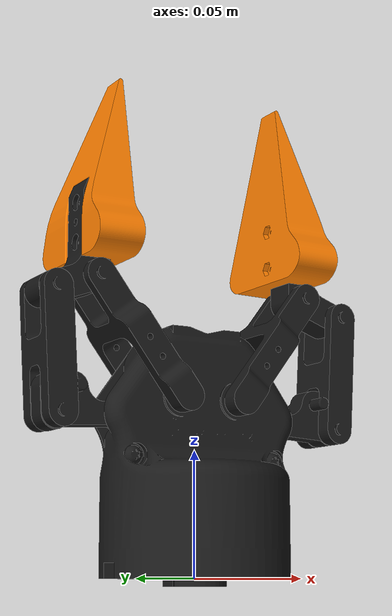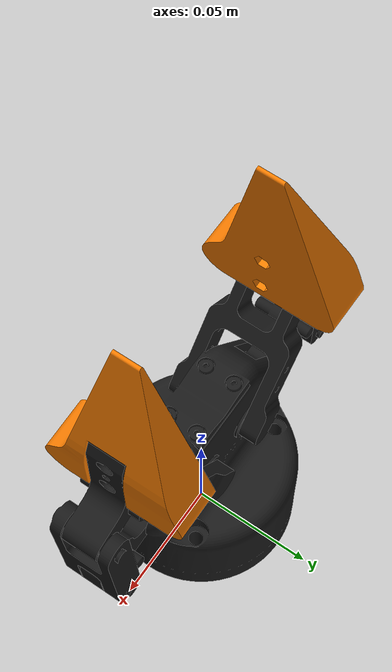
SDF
<?xml version='1.0' encoding='UTF-8'?>
<sdf version="1.7" xmlns:drake="http://drake.mit.edu">
  <model name="robotiq_gripper_85">

    <!-- Base link of the gripper -->
    <link name="robotiq_85_base_link">
      <pose>0 0 0 0 0 0</pose>
      <inertial>
        <pose>0.00021987 -2.3546E-10 0.030163 0 0 0</pose>
        <mass>0.30915</mass>
        <inertia>
          <ixx>0.00028972</ixx>
          <ixy>-5.7879E-10</ixy>
          <ixz>-1.8543E-06</ixz>
          <iyy>0.00030737</iyy>
          <iyz>1.682E-12</iyz>
          <izz>0.00019914</izz>
        </inertia>
      </inertial>

      <visual name="visual">
        <pose>0 0 0 0 0 0</pose>
        <geometry>
          <mesh>
            <uri>meshes/robotiq_85_base_link_fine.obj</uri>
          </mesh>
        </geometry>
        <material>
          <ambient>0.1 0.1 0.1 1</ambient>
          <diffuse>0.1 0.1 0.1 1</diffuse>
          <specular>0.2 0.2 0.2 1</specular>
        </material>
      </visual>

      <collision name="collision">
        <pose>0 0 0 0 0 0</pose>
        <geometry>
          <mesh>
            <uri>meshes/robotiq_85_base_link_coarse.obj</uri>
          </mesh>
        </geometry>
      </collision>
    </link>

    <!-- Left outer knuckle -->
    <link name="left_outer_knuckle">
      <pose>0.0306011444260539 0 0.0627920162695395 0 0 0</pose>
      <inertial>
        <pose>0.0178331863169983 3.68915177224286E-11 0.0021442477325704 0 0 0</pose>
        <mass>0.00684838849434396</mass>
        <inertia>
          <ixx>2.66832029033166E-07</ixx>
          <ixy>1.66142314639824E-15</ixy>
          <ixz>1.45945633322873E-07</ixz>
          <iyy>1.3889233257419E-06</iyy>
          <iyz>2.82951161241588E-15</iyz>
          <izz>1.26603336914415E-06</izz>
        </inertia>
      </inertial>

      <visual name="visual">
        <pose>0 0 0 0 0 0</pose>
        <geometry>
          <mesh>
            <uri>meshes/outer_knuckle_fine.obj</uri>
          </mesh>
        </geometry>
        <material>
          <ambient>0.1 0.1 0.1 1</ambient>
          <diffuse>0.1 0.1 0.1 1</diffuse>
          <specular>0.2 0.2 0.2 1</specular>
        </material>
      </visual>

      <collision name="collision">
        <pose>0 0 0 0 0 0</pose>
        <geometry>
          <mesh>
            <uri>meshes/outer_knuckle_coarse.obj</uri>
          </mesh>
        </geometry>
      </collision>
    </link>

    <!-- Main finger joint (primary actuated joint) -->
    <joint name="finger_joint" type="revolute">
      <pose>0 0 0 0 0 3.14159265359</pose>
      <parent>robotiq_85_base_link</parent>
      <child>left_outer_knuckle</child>
      <axis>
        <xyz>0 1 0</xyz>
        <limit>
          <lower>0</lower>
          <upper>0.725</upper>
          <velocity>2.0</velocity>
          <effort>100</effort>
        </limit>
      </axis>
    </joint>

    <!-- Left outer finger -->
    <link name="left_outer_finger">
      <pose>0.062292188669718 0 0.0608580525123135 0 0 0</pose>
      <inertial>
        <pose>0.00131451599174296 2.88942057994543E-15 0.0215404163180413 0 0 0</pose>
        <mass>0.0273093985570947</mass>
        <inertia>
          <ixx>8.51629628283022E-06</ixx>
          <ixy>2.58174336207405E-19</ixy>
          <ixz>3.83829504344079E-07</ixz>
          <iyy>6.9133328065108E-06</iyy>
          <iyz>-7.58589926143789E-19</iyz>
          <izz>2.25006832221981E-06</izz>
        </inertia>
      </inertial>

      <visual name="visual">
        <pose>0 0 0 0 0 0</pose>
        <geometry>
          <mesh>
            <uri>meshes/outer_finger_fine.obj</uri>
          </mesh>
        </geometry>
        <material>
          <ambient>0.1 0.1 0.1 1</ambient>
          <diffuse>0.1 0.1 0.1 1</diffuse>
          <specular>0.2 0.2 0.2 1</specular>
        </material>
      </visual>

      <collision name="collision">
        <pose>0 0 0 0 0 0</pose>
        <geometry>
          <mesh>
            <uri>meshes/outer_finger_coarse.obj</uri>
          </mesh>
        </geometry>
      </collision>
    </link>

    <!-- Left outer finger joint (fixed) -->
    <joint name="left_outer_finger_joint" type="fixed">
      <pose>0.0316910442266543 0 -0.00193396375724605 0 0 0</pose>
      <parent>left_outer_knuckle</parent>
      <child>left_outer_finger</child>
    </joint>

    <!-- Left inner knuckle -->
    <link name="left_inner_knuckle">
      <pose>0.0127000000001501 0 0.0693074999999639 0 0 0</pose>
      <inertial>
        <pose>0.0168606186773776 3.93808471820465E-10 0.0226699950793434 0 0 0</pose>
        <mass>0.0110930853895903</mass>
        <inertia>
          <ixx>4.27134775939882E-06</ixx>
          <ixy>-8.53568456728898E-15</ixy>
          <ixz>1.77774229944246E-06</ixz>
          <iyy>3.96548790524392E-06</iyy>
          <iyz>-8.45108024914164E-15</iyz>
          <izz>3.20325997634666E-06</izz>
        </inertia>
      </inertial>

      <visual name="visual">
        <pose>0 0 0 0 0 0</pose>
        <geometry>
          <mesh>
            <uri>meshes/inner_knuckle_fine.obj</uri>
          </mesh>
        </geometry>
        <material>
          <ambient>0.1 0.1 0.1 1</ambient>
          <diffuse>0.1 0.1 0.1 1</diffuse>
          <specular>0.2 0.2 0.2 1</specular>
        </material>
      </visual>

      <collision name="collision">
        <pose>0 0 0 0 0 0</pose>
        <geometry>
          <mesh>
            <uri>meshes/inner_knuckle_coarse.obj</uri>
          </mesh>
        </geometry>
      </collision>
    </link>

    <!-- Left inner knuckle joint -->
    <joint name="left_inner_knuckle_joint" type="revolute">
      <pose>0 0 0 0 0 3.14159265359</pose>
      <parent>robotiq_85_base_link</parent>
      <child>left_inner_knuckle</child>
      <axis>
        <xyz>0 1 0</xyz>
        <limit>
          <lower>0</lower>
          <upper>0.8757</upper>
          <velocity>2.0</velocity>
          <effort>100</effort>
        </limit>
      </axis>
    </joint>

    <!-- Left inner finger -->
    <link name="left_inner_finger">
      <pose>0.047285310862444 0 0.1148045193817614 0 0 0</pose>
      <inertial>
        <pose>0.00602756228812038 -6.47284509480176E-15 0.00669925609578108 0 0 0</pose>
        <mass>0.00724255346165744</mass>
        <inertia>
          <ixx>1.47824283625957E-06</ixx>
          <ixy>-3.95952064019123E-19</ixy>
          <ixz>1.80452387179145E-07</ixz>
          <iyy>9.81964343679842E-07</iyy>
          <iyz>1.39681001690899E-18</iyz>
          <izz>7.70370391807832E-07</izz>
        </inertia>
      </inertial>

      <visual name="visual">
        <pose>0 0 0 0 0 0</pose>
        <geometry>
          <mesh>
            <uri>meshes/inner_finger_fine_long.obj</uri>
          </mesh>
        </geometry>
        <material>
          <ambient>0.1 0.1 0.1 1</ambient>
          <diffuse>0.1 0.1 0.1 1</diffuse>
          <specular>0.2 0.2 0.2 1</specular>
        </material>
      </visual>

      <collision name="collision">
        <pose>0 0 0 0 0 0</pose>
        <geometry>
          <mesh>
            <uri>meshes/inner_finger_coarse.obj</uri>
          </mesh>
        </geometry>
      </collision>
    </link>

    <!-- Left inner finger joint -->
    <joint name="left_inner_finger_joint" type="revolute">
      <pose>0 0 0 0 0 0</pose>
      <parent>left_inner_knuckle</parent>
      <child>left_inner_finger</child>
      <axis>
        <xyz>0 1 0</xyz>
        <limit>
          <lower>0</lower>
          <upper>0.8757</upper>
          <velocity>2.0</velocity>
          <effort>100</effort>
        </limit>
      </axis>
    </joint>

    <!-- Left long finger -->
    <link name="left_long_finger">
      <pose>0.047285310862444 0 0.1148045193817614 0 0 0</pose>
      <inertial>
        <pose>0.00602756228812038 -6.47284509480176E-15 0.00669925609578108 0 0 0</pose>
        <mass>0.00724255346165744</mass>
        <inertia>
          <ixx>1.47824283625957E-06</ixx>
          <ixy>-3.95952064019123E-19</ixy>
          <ixz>1.80452387179145E-07</ixz>
          <iyy>9.81964343679842E-07</iyy>
          <iyz>1.39681001690899E-18</iyz>
          <izz>7.70370391807832E-07</izz>
        </inertia>
      </inertial>

      <visual name="visual">
        <pose>0 0 0 0 0 0</pose>
        <geometry>
          <mesh>
            <uri>meshes/left_finger.obj</uri>
          </mesh>
        </geometry>
        <material>
          <ambient>1 0.5 0 1</ambient>
          <diffuse>1 0.5 0 1</diffuse>
          <specular>0.2 0.2 0.2 1</specular>
        </material>
      </visual>

      <collision name="collision">
        <pose>0 0 0 0 0 0</pose>
        <geometry>
          <mesh>
            <uri>meshes/left_finger.obj</uri>
          </mesh>
        </geometry>
      </collision>
    </link>

    <!-- Left inner finger joint -->
    <joint name="left_long_finger_joint" type="fixed">
      <pose>0 0 0 0 0 0</pose>
      <parent>left_inner_finger</parent>
      <child>left_long_finger</child>
    </joint>

    <!-- Right outer knuckle -->
    <link name="right_outer_knuckle">
      <pose>-0.0306011444258893 0 0.0627920162695395 0 0 3.14159265358979</pose>
      <inertial>
        <pose>0.0178331863169983 3.68915177224286E-11 0.0021442477325704 0 0 0</pose>
        <mass>0.00684838849434396</mass>
        <inertia>
          <ixx>2.66832029033166E-07</ixx>
          <ixy>1.66142314639824E-15</ixy>
          <ixz>1.45945633322873E-07</ixz>
          <iyy>1.3889233257419E-06</iyy>
          <iyz>2.82951161241588E-15</iyz>
          <izz>1.26603336914415E-06</izz>
        </inertia>
      </inertial>

      <visual name="visual">
        <pose>0 0 0 0 0 0</pose>
        <geometry>
          <mesh>
            <uri>meshes/outer_knuckle_fine.obj</uri>
          </mesh>
        </geometry>
        <material>
          <ambient>0.1 0.1 0.1 1</ambient>
          <diffuse>0.1 0.1 0.1 1</diffuse>
          <specular>0.2 0.2 0.2 1</specular>
        </material>
      </visual>

      <collision name="collision">
        <pose>0 0 0 0 0 0</pose>
        <geometry>
          <mesh>
            <uri>meshes/outer_knuckle_coarse.obj</uri>
          </mesh>
        </geometry>
      </collision>
    </link>

    <!-- Right outer knuckle joint -->
    <joint name="right_outer_knuckle_joint" type="revolute">
      <pose>0 0 0 0 0 3.14159265359</pose>
      <parent>robotiq_85_base_link</parent>
      <child>right_outer_knuckle</child>
      <axis>
        <xyz>0 1 0</xyz>
        <limit>
          <lower>0</lower>
          <upper>0.8757</upper>
          <velocity>2.0</velocity>
          <effort>100</effort>
        </limit>
      </axis>
    </joint>

    <!-- Right outer finger -->
    <link name="right_outer_finger">
      <pose>-0.062310735362614 0 0.0611906597740708 0 0 3.14159265358979</pose>
      <inertial>
        <pose>0.00108844269639009 -2.611488350845E-15 0.0215530225245502 0 0 0</pose>
        <mass>0.0273093985570947</mass>
        <inertia>
          <ixx>8.52366028592721E-06</ixx>
          <ixy>3.41683380899422E-19</ixy>
          <ixz>3.18003675694284E-07</ixz>
          <iyy>6.91333280651081E-06</iyy>
          <iyz>7.37726682706417E-19</iyz>
          <izz>2.24270431912283E-06</izz>
        </inertia>
      </inertial>

      <visual name="visual">
        <pose>0 0 0 0 0 0</pose>
        <geometry>
          <mesh>
            <uri>meshes/outer_finger_fine.obj</uri>
          </mesh>
        </geometry>
        <material>
          <ambient>0.1 0.1 0.1 1</ambient>
          <diffuse>0.1 0.1 0.1 1</diffuse>
          <specular>0.2 0.2 0.2 1</specular>
        </material>
      </visual>

      <collision name="collision">
        <pose>0 0 0 0 0 0</pose>
        <geometry>
          <mesh>
            <uri>meshes/outer_finger_coarse.obj</uri>
          </mesh>
        </geometry>
      </collision>
    </link>

    <!-- Right outer finger joint (fixed) -->
    <joint name="right_outer_finger_joint" type="fixed">
      <pose>0 0 0 0 0 0</pose>
      <parent>right_outer_knuckle</parent>
      <child>right_outer_finger</child>
    </joint>

    <!-- Right inner knuckle -->
    <link name="right_inner_knuckle">
      <pose>-0.0126999999998499 0 0.0693075000000361 0 0 3.14159265358979</pose>
      <inertial>
        <pose>0.0168606186773776 3.93808471820465E-10 0.0226699950793434 0 0 0</pose>
        <mass>0.0110930853895903</mass>
        <inertia>
          <ixx>4.27134775939882E-06</ixx>
          <ixy>-8.53568456728898E-15</ixy>
          <ixz>1.77774229944246E-06</ixz>
          <iyy>3.96548790524392E-06</iyy>
          <iyz>-8.45108024914164E-15</iyz>
          <izz>3.20325997634666E-06</izz>
        </inertia>
      </inertial>

      <visual name="visual">
        <pose>0 0 0 0 0 0</pose>
        <geometry>
          <mesh>
            <uri>meshes/inner_knuckle_fine.obj</uri>
          </mesh>
        </geometry>
        <material>
          <ambient>0.1 0.1 0.1 1</ambient>
          <diffuse>0.1 0.1 0.1 1</diffuse>
          <specular>0.2 0.2 0.2 1</specular>
        </material>
      </visual>

      <collision name="collision">
        <pose>0 0 0 0 0 0</pose>
        <geometry>
          <mesh>
            <uri>meshes/inner_knuckle_coarse.obj</uri>
          </mesh>
        </geometry>
      </collision>
    </link>

    <!-- Right inner knuckle joint -->
    <joint name="right_inner_knuckle_joint" type="revolute">
      <pose>0 0 0 0 0 3.14159265359</pose>
      <parent>robotiq_85_base_link</parent>
      <child>right_inner_knuckle</child>
      <axis>
        <xyz>0 1 0</xyz>
        <limit>
          <lower>0</lower>
          <upper>0.8757</upper>
          <velocity>2.0</velocity>
          <effort>100</effort>
        </limit>
      </axis>
    </joint>

    <!-- Right inner finger -->
    <link name="right_inner_finger">
      <pose>-0.047406047545241 0 0.1151648878542049 0 0 3.14159265358979</pose>
      <inertial>
        <pose>0.00602756228812038 -6.47284509480176E-15 0.00669925609578108 0 0 0</pose>
        <mass>0.00724255346165744</mass>
        <inertia>
          <ixx>1.47824283625957E-06</ixx>
          <ixy>-3.95952064019123E-19</ixy>
          <ixz>1.80452387179145E-07</ixz>
          <iyy>9.81964343679842E-07</iyy>
          <iyz>1.39681001690899E-18</iyz>
          <izz>7.70370391807832E-07</izz>
        </inertia>
      </inertial>

      <visual name="visual">
        <pose>0 0 0 0 0 0</pose>
        <geometry>
          <mesh>
            <uri>meshes/inner_finger_fine_long.obj</uri>
          </mesh>
        </geometry>
        <material>
          <ambient>0.1 0.1 0.1 1</ambient>
          <diffuse>0.1 0.1 0.1 1</diffuse>
          <specular>0.2 0.2 0.2 1</specular>
        </material>
      </visual>

      <collision name="collision">
        <pose>0 0 0 0 0 0</pose>
        <geometry>
          <mesh>
            <uri>meshes/inner_finger_coarse.obj</uri>
          </mesh>
        </geometry>
      </collision>
    </link>

    <!-- Right inner finger joint -->
    <joint name="right_inner_finger_joint" type="revolute">
      <pose>0 0 0 0 0 0</pose>
      <parent>right_inner_knuckle</parent>
      <child>right_inner_finger</child>
      <axis>
        <xyz>0 1 0</xyz>
        <limit>
          <lower>0</lower>
          <upper>0.8757</upper>
          <velocity>2.0</velocity>
          <effort>100</effort>
        </limit>
      </axis>
    </joint>

        <!-- Left long finger -->
    <link name="right_long_finger">
      <pose>-0.047406047545241 0 0.1151648878542049 0 0 3.14159265358979</pose>
      <inertial>
      <pose>0.00602756228812038 -6.47284509480176E-15 0.00669925609578108 0 0 0</pose>
      <mass>0.00724255346165744</mass>
      <inertia>
        <ixx>1.47824283625957E-06</ixx>
        <ixy>-3.95952064019123E-19</ixy>
        <ixz>1.80452387179145E-07</ixz>
        <iyy>9.81964343679842E-07</iyy>
        <iyz>1.39681001690899E-18</iyz>
        <izz>7.70370391807832E-07</izz>
      </inertia>
      </inertial>

      <visual name="visual">
      <pose>0 0 0 0 0 0</pose>
      <geometry>
        <mesh>
        <uri>meshes/right_finger.obj</uri>
        </mesh>
      </geometry>
      <material>
        <ambient>1 0.5 0 1</ambient>
        <diffuse>1 0.5 0 1</diffuse>
        <specular>0.2 0.2 0.2 1</specular>
      </material>
      </visual>

      <collision name="collision">
      <pose>0 0 0 0 0 0</pose>
      <geometry>
        <mesh>
        <uri>meshes/right_finger.obj</uri>
        </mesh>
      </geometry>
      </collision>
    </link>

    <!-- Left inner finger joint -->
    <joint name="right_long_finger_joint" type="fixed">
      <pose>0 0 0 0 0 0</pose>
      <parent>right_inner_finger</parent>
      <child>right_long_finger</child>
    </joint>

    <!-- Distance evaluation frames -->
    <!-- Left inner finger contact frame -->
    <frame name="left_inner_finger_contact">
      <pose relative_to="left_inner_finger">0.018 0.0 -0.0065 0 0 0</pose>
    </frame>

    <!-- Left outer finger contact frame -->
    <frame name="left_outer_finger_contact">
      <pose relative_to="left_outer_finger">0.0055 0.0 0.047 0 0 0</pose>
    </frame>

    <!-- Right inner finger contact frame -->
    <frame name="right_inner_finger_contact">
      <pose relative_to="right_inner_finger">0.018 0.0 -0.0065 0 0 0</pose>
    </frame>

    <!-- Right outer finger contact frame -->
    <frame name="right_outer_finger_contact">
      <pose relative_to="right_outer_finger">0.0055 0.0 0.047 0 0 0</pose>
    </frame>

    <drake:collision_filter_group name="left_finger">
      <drake:member>left_outer_knuckle</drake:member>
      <drake:member>left_inner_knuckle</drake:member>
      <drake:member>left_outer_finger</drake:member>
      <drake:member>left_inner_finger</drake:member>
      <drake:ignored_collision_filter_group>left_finger</drake:ignored_collision_filter_group>
    </drake:collision_filter_group>
    <drake:collision_filter_group name="right_finger">
      <drake:member>right_inner_knuckle</drake:member>
      <drake:member>right_outer_knuckle</drake:member>
      <drake:member>right_outer_finger</drake:member>
      <drake:member>right_inner_finger</drake:member>
      <drake:ignored_collision_filter_group>right_finger</drake:ignored_collision_filter_group>
    </drake:collision_filter_group>

  </model>
</sdf>
